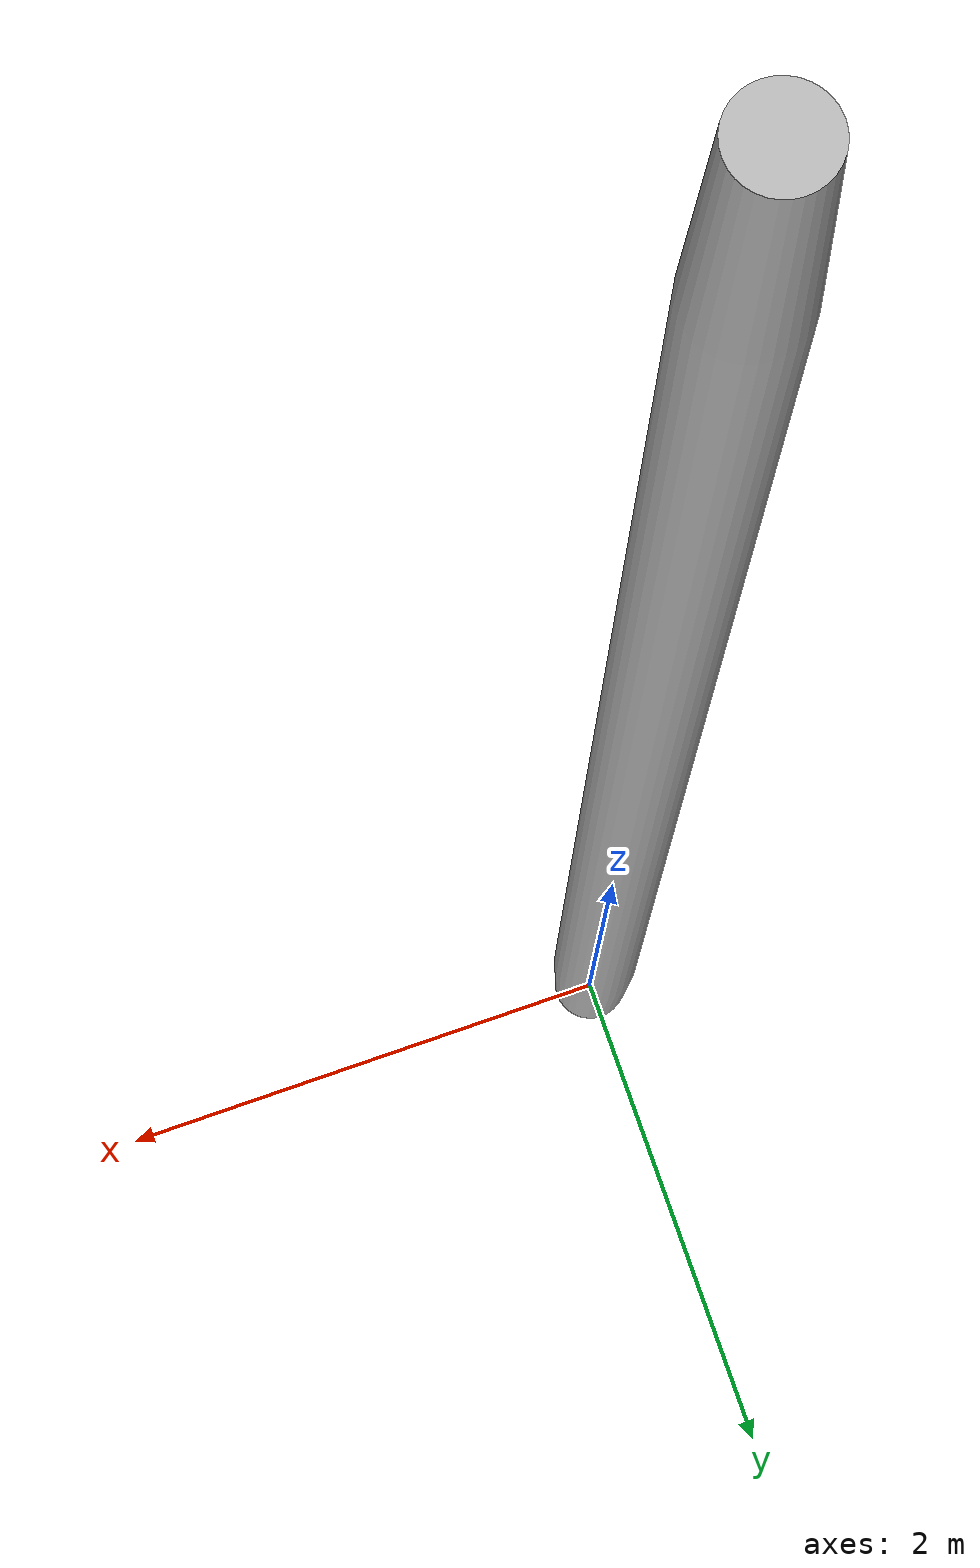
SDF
<?xml version="1.0" encoding="UTF-8" ?>
<sdf version="1.4">
  <!--Generated by blend2world.py-->
    <model name="barel_110l">
      <pose>0.0 0.0 0.0  0.0 0.0 0.0</pose>
      <static>true</static>
      <link name="body">
        <collision name="collision">
          <geometry>
            <mesh>
              <uri>model://barrel_110l/meshes/barrel_110l.dae</uri>
              <scale>1 1 15</scale>
            </mesh>
          </geometry>
        </collision>
        <visual name="visual">
          <geometry>
            <mesh>
              <uri>model://barrel_110l/meshes/barrel_110l.dae</uri>
              <scale>1 1 15</scale>
            </mesh>
          </geometry>
	  <material>
            <script>
              <uri>model://barrel_110l/textures/barrel_110l.jpg</uri>
            </script>
          </material>
        </visual>
      </link>
    </model>
</sdf>
